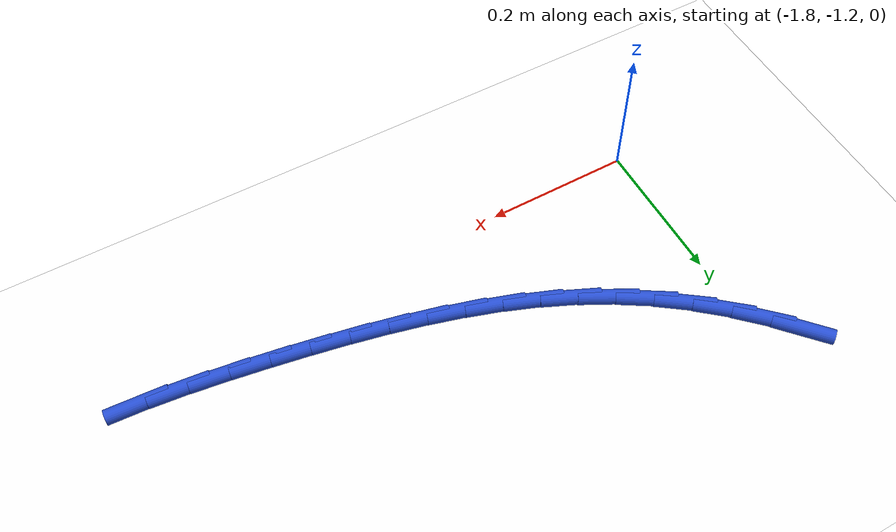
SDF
<sdf version="1.6">
 <world name="default">
  <model name="ground_plane">
   <static>1</static>
   <link name="link">
    <collision name="collision">
     <geometry><plane><normal>0 0 1</normal><size>100 100</size></plane></geometry>
     <surface><friction><ode><mu>100</mu><mu2>50</mu2></ode></friction></surface>
    </collision>
    <visual name="visual">
     <cast_shadows>0</cast_shadows>
     <geometry><plane><normal>0 0 1</normal><size>100 100</size></plane></geometry>
     <material>
      <script><uri>file://media/materials/scripts/gazebo.material</uri><name>Gazebo/WhiteGlow</name></script>
     </material>
    </visual>
   </link>
  </model>
  <model name="line">
   <link name="link_88">
    <pose>-1.8522437977008084 -0.854356721445644 0.01 0 1.57 -0.8337216930820551</pose>
    <collision name="collision">
     <geometry><cylinder><radius>0.01</radius><length>0.08</length></cylinder></geometry>
    </collision>
    <visual name="visual">
     <material>
      <script><name>Gazebo/Blue</name><uri>file://media/materials/scripts/gazebo.material</uri></script>
     </material>
     <geometry><cylinder><radius>0.01</radius><length>0.08</length></cylinder></geometry>
    </visual>
   </link>
   <link name="link_89">
    <pose>-1.8182401764293472 -0.8918163917756184 0.01 0 1.57 -0.767957498677842</pose>
    <collision name="collision">
     <geometry><cylinder><radius>0.01</radius><length>0.08</length></cylinder></geometry>
    </collision>
    <visual name="visual">
     <material>
      <script><name>Gazebo/Blue</name><uri>file://media/materials/scripts/gazebo.material</uri></script>
     </material>
     <geometry><cylinder><radius>0.01</radius><length>0.08</length></cylinder></geometry>
    </visual>
   </link>
   <link name="link_90">
    <pose>-1.7820996547272483 -0.9267177698800281 0.01 0 1.57 -0.6992457681102792</pose>
    <collision name="collision">
     <geometry><cylinder><radius>0.01</radius><length>0.08</length></cylinder></geometry>
    </collision>
    <visual name="visual">
     <material>
      <script><name>Gazebo/Blue</name><uri>file://media/materials/scripts/gazebo.material</uri></script>
     </material>
     <geometry><cylinder><radius>0.01</radius><length>0.08</length></cylinder></geometry>
    </visual>
   </link>
   <link name="link_91">
    <pose>-1.743977205887148 -0.9587787446765635 0.01 0 1.57 -0.6269210149627662</pose>
    <collision name="collision">
     <geometry><cylinder><radius>0.01</radius><length>0.08</length></cylinder></geometry>
    </collision>
    <visual name="visual">
     <material>
      <script><name>Gazebo/Blue</name><uri>file://media/materials/scripts/gazebo.material</uri></script>
     </material>
     <geometry><cylinder><radius>0.01</radius><length>0.08</length></cylinder></geometry>
    </visual>
   </link>
   <link name="link_92">
    <pose>-1.7040277578718594 -0.9877185034734447 0.01 0 1.57 -0.5532769791290433</pose>
    <collision name="collision">
     <geometry><cylinder><radius>0.01</radius><length>0.08</length></cylinder></geometry>
    </collision>
    <visual name="visual">
     <material>
      <script><name>Gazebo/Blue</name><uri>file://media/materials/scripts/gazebo.material</uri></script>
     </material>
     <geometry><cylinder><radius>0.01</radius><length>0.08</length></cylinder></geometry>
    </visual>
   </link>
   <link name="link_93">
    <pose>-1.6624002198013237 -1.0134286323956274 0.01 0 1.57 -0.48438895238524565</pose>
    <collision name="collision">
     <geometry><cylinder><radius>0.01</radius><length>0.08</length></cylinder></geometry>
    </collision>
    <visual name="visual">
     <material>
      <script><name>Gazebo/Blue</name><uri>file://media/materials/scripts/gazebo.material</uri></script>
     </material>
     <geometry><cylinder><radius>0.01</radius><length>0.08</length></cylinder></geometry>
    </visual>
   </link>
   <link name="link_94">
    <pose>-1.619231512521915 -1.0361440998797204 0.01 0 1.57 -0.42169623254143357</pose>
    <collision name="collision">
     <geometry><cylinder><radius>0.01</radius><length>0.08</length></cylinder></geometry>
    </collision>
    <visual name="visual">
     <material>
      <script><name>Gazebo/Blue</name><uri>file://media/materials/scripts/gazebo.material</uri></script>
     </material>
     <geometry><cylinder><radius>0.01</radius><length>0.08</length></cylinder></geometry>
    </visual>
   </link>
   <link name="link_95">
    <pose>-1.5746571368676652 -1.0561405480354373 0.01 0 1.57 -0.3656633381072255</pose>
    <collision name="collision">
     <geometry><cylinder><radius>0.01</radius><length>0.08</length></cylinder></geometry>
    </collision>
    <visual name="visual">
     <material>
      <script><name>Gazebo/Blue</name><uri>file://media/materials/scripts/gazebo.material</uri></script>
     </material>
     <geometry><cylinder><radius>0.01</radius><length>0.08</length></cylinder></geometry>
    </visual>
   </link>
   <link name="link_96">
    <pose>-1.5288125936726085 -1.0736936189724906 0.01 0 1.57 -0.316484566731958</pose>
    <collision name="collision">
     <geometry><cylinder><radius>0.01</radius><length>0.08</length></cylinder></geometry>
    </collision>
    <visual name="visual">
     <material>
      <script><name>Gazebo/Blue</name><uri>file://media/materials/scripts/gazebo.material</uri></script>
     </material>
     <geometry><cylinder><radius>0.01</radius><length>0.08</length></cylinder></geometry>
    </visual>
   </link>
   <link name="link_97">
    <pose>-1.481833383770777 -1.0890789548005921 0.01 0 1.57 -0.27415440661451</pose>
    <collision name="collision">
     <geometry><cylinder><radius>0.01</radius><length>0.08</length></cylinder></geometry>
    </collision>
    <visual name="visual">
     <material>
      <script><name>Gazebo/Blue</name><uri>file://media/materials/scripts/gazebo.material</uri></script>
     </material>
     <geometry><cylinder><radius>0.01</radius><length>0.08</length></cylinder></geometry>
    </visual>
   </link>
   <link name="link_98">
    <pose>-1.4338550079962036 -1.102572197629456 0.01 0 1.57 -0.2385377121508148</pose>
    <collision name="collision">
     <geometry><cylinder><radius>0.01</radius><length>0.08</length></cylinder></geometry>
    </collision>
    <visual name="visual">
     <material>
      <script><name>Gazebo/Blue</name><uri>file://media/materials/scripts/gazebo.material</uri></script>
     </material>
     <geometry><cylinder><radius>0.01</radius><length>0.08</length></cylinder></geometry>
    </visual>
   </link>
   <link name="link_99">
    <pose>-1.3850129671829217 -1.1144489895687948 0.01 0 1.57 -0.20943006837044356</pose>
    <collision name="collision">
     <geometry><cylinder><radius>0.01</radius><length>0.08</length></cylinder></geometry>
    </collision>
    <visual name="visual">
     <material>
      <script><name>Gazebo/Blue</name><uri>file://media/materials/scripts/gazebo.material</uri></script>
     </material>
     <geometry><cylinder><radius>0.01</radius><length>0.08</length></cylinder></geometry>
    </visual>
   </link>
   <link name="link_100">
    <pose>-1.3354427621649623 -1.1249849727283212 0.01 0 1.57 -0.1866047912230835</pose>
    <collision name="collision">
     <geometry><cylinder><radius>0.01</radius><length>0.08</length></cylinder></geometry>
    </collision>
    <visual name="visual">
     <material>
      <script><name>Gazebo/Blue</name><uri>file://media/materials/scripts/gazebo.material</uri></script>
     </material>
     <geometry><cylinder><radius>0.01</radius><length>0.08</length></cylinder></geometry>
    </visual>
   </link>
   <link name="link_101">
    <pose>-1.2852798937763605 -1.1344557892177478 0.01 0 1.57 -0.16981336854015758</pose>
    <collision name="collision">
     <geometry><cylinder><radius>0.01</radius><length>0.08</length></cylinder></geometry>
    </collision>
    <visual name="visual">
     <material>
      <script><name>Gazebo/Blue</name><uri>file://media/materials/scripts/gazebo.material</uri></script>
     </material>
     <geometry><cylinder><radius>0.01</radius><length>0.08</length></cylinder></geometry>
    </visual>
   </link>
   <link name="link_102">
    <pose>-1.2346601032840026 -1.1431352962854973 0.01 0 1.57 -0.154484387061133</pose>
    <collision name="collision">
     <geometry><cylinder><radius>0.01</radius><length>0.08</length></cylinder></geometry>
    </collision>
    <visual name="visual">
     <material>
      <script><name>Gazebo/Blue</name><uri>file://media/materials/scripts/gazebo.material</uri></script>
     </material>
     <geometry><cylinder><radius>0.01</radius><length>0.08</length></cylinder></geometry>
    </visual>
   </link>
   <link name="link_103">
    <pose>-1.1837506769601454 -1.1510631757841827 0.01 0 1.57 -0.13168602905626176</pose>
    <collision name="collision">
     <geometry><cylinder><radius>0.01</radius><length>0.08</length></cylinder></geometry>
    </collision>
    <visual name="visual">
     <material>
      <script><name>Gazebo/Blue</name><uri>file://media/materials/scripts/gazebo.material</uri></script>
     </material>
     <geometry><cylinder><radius>0.01</radius><length>0.08</length></cylinder></geometry>
    </visual>
   </link>
   <link name="link_104">
    <pose>-1.132781531737782 -1.1578141687747625 0.01 0 1.57 -0.09995774240084293</pose>
    <collision name="collision">
     <geometry><cylinder><radius>0.01</radius><length>0.08</length></cylinder></geometry>
    </collision>
    <visual name="visual">
     <material>
      <script><name>Gazebo/Blue</name><uri>file://media/materials/scripts/gazebo.material</uri></script>
     </material>
     <geometry><cylinder><radius>0.01</radius><length>0.08</length></cylinder></geometry>
    </visual>
   </link>
   <link name="link_105">
    <pose>-1.0819899747308301 -1.1629081550645022 0.01 0 1.57 -0.05862776005467694</pose>
    <collision name="collision">
     <geometry><cylinder><radius>0.01</radius><length>0.08</length></cylinder></geometry>
    </collision>
    <visual name="visual">
     <material>
      <script><name>Gazebo/Blue</name><uri>file://media/materials/scripts/gazebo.material</uri></script>
     </material>
     <geometry><cylinder><radius>0.01</radius><length>0.08</length></cylinder></geometry>
    </visual>
   </link>
  </model>
 </world>
</sdf>
